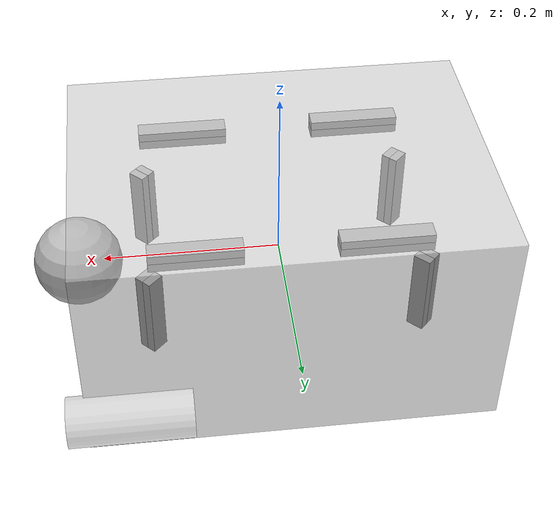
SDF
<?xml version='1.0' encoding='UTF-8'?>
<sdf version="1.6">
  <model name="auv">
    <pose>0 0 0 0 0 0</pose>

    <!-- BlueROV2 thruster reference: http://www.ardusub.com/introduction/features.html -->
    <!-- fluid_density: 1000 -->
    <!-- displaced_mass: 10.05 -->

    <link name="base_link">
      <inertial>
        <pose>0 0 0.011 0 0 0</pose>
        <mass>10</mass>
        <inertia>
          <ixx>0.09873097998042396</ixx>
          <ixy>0</ixy>
          <ixz>0</ixz>
          <iyy>0.17756847998042397</iyy>
          <iyz>0</iyz>
          <izz>0.2692441666666667</izz>
        </inertia>
      </inertial>

      <visual name="base_link_box">
        <pose>0 0 0 0 0 0</pose>
        <transparency>0.5</transparency>
        <geometry>
          <box>
            <size>0.457 0.338 0.25</size>
          </box>
        </geometry>
      </visual>

      <visual name="base_link_dome">
        <pose>0.2285 0 0 0 0 0</pose>
        <geometry>
          <sphere>
            <radius>0.05</radius>
          </sphere>
        </geometry>
        <material>
          <emissive>0 1 0 0</emissive>
        </material>
      </visual>

      <!-- Collision volume * fluid_density == displaced mass, used by BuoyancyPlugin -->
      <collision name="base_link_collision">
        <pose>0 0 0.06 0 0 0</pose>
        <geometry>
          <box>
            <size>0.457 0.338 0.06506286173008947</size>
          </box>
        </geometry>
      </collision>

      <!-- IMU sensor gyro and accel data will be sent to ArduSub -->
      <sensor name="imu_sensor" type="imu">
        <!-- Transform from the Gazebo body frame (x-forward, y-left, z-up)
             to the ArduPilot body frame (x-forward, y-right, z-down) -->
        <pose>0 0 0 3.141592653589793 0 0</pose>
        <always_on>1</always_on>
        <update_rate>1000.0</update_rate>
      </sensor>

    </link>

    <!-- Hydrodynamics plugin -->
    <plugin
        filename="gz-sim-hydrodynamics-system"
        name="gz::sim::systems::Hydrodynamics">
      <link_name>base_link</link_name>
      <water_density>1000</water_density>
      <!-- Added mass: -->
      <xDotU>0</xDotU>
      <yDotV>0</yDotV>
      <zDotW>0</zDotW>
      <kDotP>0</kDotP>
      <mDotQ>0</mDotQ>
      <nDotR>0</nDotR>
      <!-- First order stability derivative: -->
      <xU>0</xU>
      <yV>0</yV>
      <zW>0</zW>
      <kP>0</kP>
      <mQ>0</mQ>
      <nR>0</nR>
      <!-- Second order stability derivative: -->
      <xUabsU>-33.800000000000004</xUabsU>
      <yVabsV>-54.26875</yVabsV>
      <zWabsW>-73.37135</zWabsW>
      <kPabsP>-4.0</kPabsP>
      <mQabsQ>-4.0</mQabsQ>
      <nRabsR>-4.0</nRabsR>
    </plugin>

    <link name="thruster1">
      <pose>0.15 -0.09 0 -1.5707963267948966 1.5707963267948966 -0.7853981633974483</pose>
      <visual name="thruster_front">
        <pose>0 0 0.005 0 0 0</pose>
        <geometry>
          <box>
            <size>0.1 0.02 0.01</size>
          </box>
        </geometry>
        <material>
          <emissive>0 0 1 0</emissive>
        </material>
      </visual>
      <visual name="thruster_back">
        <pose>0 0 -0.005 0 0 0</pose>
        <geometry>
          <box>
            <size>0.1 0.02 0.01</size>
          </box>
        </geometry>
        <material>
          <emissive>1 0 0 0</emissive>
        </material>
      </visual>
      <inertial>
        <mass>0.002</mass>
        <inertia>
          <ixx>0.001</ixx>
          <ixy>0</ixy>
          <ixz>0</ixz>
          <iyy>0.001</iyy>
          <iyz>0</iyz>
          <izz>0.001</izz>
        </inertia>
      </inertial>
    </link>

    <link name="thruster2">
      <pose>0.15 0.09 0 -1.5707963267948966 1.5707963267948966 -2.356194490192345</pose>
      <visual name="thruster_front">
        <pose>0 0 0.005 0 0 0</pose>
        <geometry>
          <box>
            <size>0.1 0.02 0.01</size>
          </box>
        </geometry>
        <material>
          <emissive>0 0 1 0</emissive>
        </material>
      </visual>
      <visual name="thruster_back">
        <pose>0 0 -0.005 0 0 0</pose>
        <geometry>
          <box>
            <size>0.1 0.02 0.01</size>
          </box>
        </geometry>
        <material>
          <emissive>1 0 0 0</emissive>
        </material>
      </visual>
      <inertial>
        <mass>0.002</mass>
        <inertia>
          <ixx>0.001</ixx>
          <ixy>0</ixy>
          <ixz>0</ixz>
          <iyy>0.001</iyy>
          <iyz>0</iyz>
          <izz>0.001</izz>
        </inertia>
      </inertial>
    </link>

    <link name="thruster3">
      <pose>-0.15 -0.09 0 -1.5707963267948966 1.5707963267948966 0.7853981633974483</pose>
      <visual name="thruster_front">
        <pose>0 0 0.005 0 0 0</pose>
        <geometry>
          <box>
            <size>0.1 0.02 0.01</size>
          </box>
        </geometry>
        <material>
          <emissive>0 0 1 0</emissive>
        </material>
      </visual>
      <visual name="thruster_back">
        <pose>0 0 -0.005 0 0 0</pose>
        <geometry>
          <box>
            <size>0.1 0.02 0.01</size>
          </box>
        </geometry>
        <material>
          <emissive>1 0 0 0</emissive>
        </material>
      </visual>
      <inertial>
        <mass>0.002</mass>
        <inertia>
          <ixx>0.001</ixx>
          <ixy>0</ixy>
          <ixz>0</ixz>
          <iyy>0.001</iyy>
          <iyz>0</iyz>
          <izz>0.001</izz>
        </inertia>
      </inertial>
    </link>

    <link name="thruster4">
      <pose>-0.15 0.09 0 -1.5707963267948966 1.5707963267948966 2.356194490192345</pose>
      <visual name="thruster_front">
        <pose>0 0 0.005 0 0 0</pose>
        <geometry>
          <box>
            <size>0.1 0.02 0.01</size>
          </box>
        </geometry>
        <material>
          <emissive>0 0 1 0</emissive>
        </material>
      </visual>
      <visual name="thruster_back">
        <pose>0 0 -0.005 0 0 0</pose>
        <geometry>
          <box>
            <size>0.1 0.02 0.01</size>
          </box>
        </geometry>
        <material>
          <emissive>1 0 0 0</emissive>
        </material>
      </visual>
      <inertial>
        <mass>0.002</mass>
        <inertia>
          <ixx>0.001</ixx>
          <ixy>0</ixy>
          <ixz>0</ixz>
          <iyy>0.001</iyy>
          <iyz>0</iyz>
          <izz>0.001</izz>
        </inertia>
      </inertial>
    </link>

    <link name="thruster5">
      <pose>0.1 -0.105 0.09 0 0 0</pose>
      <visual name="thruster_front">
        <pose>0 0 0.005 0 0 0</pose>
        <geometry>
          <box>
            <size>0.1 0.02 0.01</size>
          </box>
        </geometry>
        <material>
          <emissive>0 0 1 0</emissive>
        </material>
      </visual>
      <visual name="thruster_back">
        <pose>0 0 -0.005 0 0 0</pose>
        <geometry>
          <box>
            <size>0.1 0.02 0.01</size>
          </box>
        </geometry>
        <material>
          <emissive>1 0 0 0</emissive>
        </material>
      </visual>
      <inertial>
        <mass>0.002</mass>
        <inertia>
          <ixx>0.001</ixx>
          <ixy>0</ixy>
          <ixz>0</ixz>
          <iyy>0.001</iyy>
          <iyz>0</iyz>
          <izz>0.001</izz>
        </inertia>
      </inertial>
    </link>

    <link name="thruster6">
      <pose>0.1 0.105 0.09 0 0 0</pose>
      <visual name="thruster_front">
        <pose>0 0 0.005 0 0 0</pose>
        <geometry>
          <box>
            <size>0.1 0.02 0.01</size>
          </box>
        </geometry>
        <material>
          <emissive>0 0 1 0</emissive>
        </material>
      </visual>
      <visual name="thruster_back">
        <pose>0 0 -0.005 0 0 0</pose>
        <geometry>
          <box>
            <size>0.1 0.02 0.01</size>
          </box>
        </geometry>
        <material>
          <emissive>1 0 0 0</emissive>
        </material>
      </visual>
      <inertial>
        <mass>0.002</mass>
        <inertia>
          <ixx>0.001</ixx>
          <ixy>0</ixy>
          <ixz>0</ixz>
          <iyy>0.001</iyy>
          <iyz>0</iyz>
          <izz>0.001</izz>
        </inertia>
      </inertial>
    </link>

     <link name="thruster7">
      <pose>-0.1 -0.105 0.09 0 0 0</pose>
      <visual name="thruster_front">
        <pose>0 0 0.005 0 0 0</pose>
        <geometry>
          <box>
            <size>0.1 0.02 0.01</size>
          </box>
        </geometry>
        <material>
          <emissive>0 0 1 0</emissive>
        </material>
      </visual>
      <visual name="thruster_back">
        <pose>0 0 -0.005 0 0 0</pose>
        <geometry>
          <box>
            <size>0.1 0.02 0.01</size>
          </box>
        </geometry>
        <material>
          <emissive>1 0 0 0</emissive>
        </material>
      </visual>
      <inertial>
        <mass>0.002</mass>
        <inertia>
          <ixx>0.001</ixx>
          <ixy>0</ixy>
          <ixz>0</ixz>
          <iyy>0.001</iyy>
          <iyz>0</iyz>
          <izz>0.001</izz>
        </inertia>
      </inertial>
    </link>

     <link name="thruster8">
      <pose>-0.1 0.105 0.09 0 0 0</pose>
      <visual name="thruster_front">
        <pose>0 0 0.005 0 0 0</pose>
        <geometry>
          <box>
            <size>0.1 0.02 0.01</size>
          </box>
        </geometry>
        <material>
          <emissive>0 0 1 0</emissive>
        </material>
      </visual>
      <visual name="thruster_back">
        <pose>0 0 -0.005 0 0 0</pose>
        <geometry>
          <box>
            <size>0.1 0.02 0.01</size>
          </box>
        </geometry>
        <material>
          <emissive>1 0 0 0</emissive>
        </material>
      </visual>
      <inertial>
        <mass>0.002</mass>
        <inertia>
          <ixx>0.001</ixx>
          <ixy>0</ixy>
          <ixz>0</ixz>
          <iyy>0.001</iyy>
          <iyz>0</iyz>
          <izz>0.001</izz>
        </inertia>
      </inertial>
    </link>

    <joint name="thruster1_joint" type="revolute">
      <parent>base_link</parent>
      <child>thruster1</child>
      <axis>
        <xyz>0 0 -1</xyz>
      </axis>
    </joint>

    <joint name="thruster2_joint" type="revolute">
      <parent>base_link</parent>
      <child>thruster2</child>
      <axis>
        <xyz>0 0 -1</xyz>
      </axis>
    </joint>

    <joint name="thruster3_joint" type="revolute">
      <parent>base_link</parent>
      <child>thruster3</child>
      <axis>
        <xyz>0 0 -1</xyz>
      </axis>
    </joint>

    <joint name="thruster4_joint" type="revolute">
      <parent>base_link</parent>
      <child>thruster4</child>
      <axis>
        <xyz>0 0 -1</xyz>
      </axis>
    </joint>

    <joint name="thruster5_joint" type="revolute">
      <parent>base_link</parent>
      <child>thruster5</child>
      <axis>
        <xyz>0 0 -1</xyz>
      </axis>
    </joint>

    <joint name="thruster6_joint" type="revolute">
      <parent>base_link</parent>
      <child>thruster6</child>
      <axis>
        <xyz>0 0 -1</xyz>
      </axis>
    </joint>

    <joint name="thruster7_joint" type="revolute">
      <parent>base_link</parent>
      <child>thruster7</child>
      <axis>
        <xyz>0 0 -1</xyz>
      </axis>
    </joint>

    <joint name="thruster8_joint" type="revolute">
      <parent>base_link</parent>
      <child>thruster8</child>
      <axis>
        <xyz>0 0 -1</xyz>
      </axis>
    </joint>

    <plugin
        filename="gz-sim-thruster-system"
        name="gz::sim::systems::Thruster">
      <namespace>orca4</namespace>
      <joint_name>thruster1_joint</joint_name>
      <thrust_coefficient>0.02</thrust_coefficient>
      <fluid_density>1000</fluid_density>
      <propeller_diameter>0.1</propeller_diameter>
      <velocity_control>true</velocity_control>
      <use_angvel_cmd>False</use_angvel_cmd>
    </plugin>

    <plugin
        filename="gz-sim-thruster-system"
        name="gz::sim::systems::Thruster">
      <namespace>orca4</namespace>
      <joint_name>thruster2_joint</joint_name>
      <thrust_coefficient>0.02</thrust_coefficient>
      <fluid_density>1000</fluid_density>
      <propeller_diameter>0.1</propeller_diameter>
      <velocity_control>true</velocity_control>
      <use_angvel_cmd>False</use_angvel_cmd>
    </plugin>

    <plugin
        filename="gz-sim-thruster-system"
        name="gz::sim::systems::Thruster">
      <namespace>orca4</namespace>
      <joint_name>thruster3_joint</joint_name>
      <!-- Reverse spin to balance torque -->
      <thrust_coefficient>-0.02</thrust_coefficient>
      <fluid_density>1000</fluid_density>
      <propeller_diameter>0.1</propeller_diameter>
      <velocity_control>true</velocity_control>
      <use_angvel_cmd>False</use_angvel_cmd>
    </plugin>

    <plugin
        filename="gz-sim-thruster-system"
        name="gz::sim::systems::Thruster">
      <namespace>orca4</namespace>
      <joint_name>thruster4_joint</joint_name>
      <!-- Reverse spin to balance torque -->
      <thrust_coefficient>-0.02</thrust_coefficient>
      <fluid_density>1000</fluid_density>
      <propeller_diameter>0.1</propeller_diameter>
      <velocity_control>true</velocity_control>
      <use_angvel_cmd>False</use_angvel_cmd>
    </plugin>

    <plugin
        filename="gz-sim-thruster-system"
        name="gz::sim::systems::Thruster">
      <namespace>orca4</namespace>
      <joint_name>thruster5_joint</joint_name>
      <thrust_coefficient>0.02</thrust_coefficient>
      <fluid_density>1000</fluid_density>
      <propeller_diameter>0.1</propeller_diameter>
      <velocity_control>true</velocity_control>
      <use_angvel_cmd>False</use_angvel_cmd>
    </plugin>

    <plugin
        filename="gz-sim-thruster-system"
        name="gz::sim::systems::Thruster">
      <namespace>orca4</namespace>
      <joint_name>thruster6_joint</joint_name>
      <!-- Reverse spin to balance torque -->
      <thrust_coefficient>-0.02</thrust_coefficient>
      <fluid_density>1000</fluid_density>
      <propeller_diameter>0.1</propeller_diameter>
      <velocity_control>true</velocity_control>
      <use_angvel_cmd>False</use_angvel_cmd>
    </plugin>
    <plugin
        filename="gz-sim-thruster-system"
        name="gz::sim::systems::Thruster">
      <namespace>orca4</namespace>
      <joint_name>thruster7_joint</joint_name>
      <!-- Reverse spin to balance torque -->
      <thrust_coefficient>-0.02</thrust_coefficient>
      <fluid_density>1000</fluid_density>
      <propeller_diameter>0.1</propeller_diameter>
      <velocity_control>true</velocity_control>
      <use_angvel_cmd>False</use_angvel_cmd>
    </plugin>
    <plugin
        filename="gz-sim-thruster-system"
        name="gz::sim::systems::Thruster">
      <namespace>orca4</namespace>
      <joint_name>thruster8_joint</joint_name>
      <thrust_coefficient>0.02</thrust_coefficient>
      <fluid_density>1000</fluid_density>
      <propeller_diameter>0.1</propeller_diameter>
      <velocity_control>true</velocity_control>
      <use_angvel_cmd>False</use_angvel_cmd>
    </plugin>

    <plugin name="ArduPilotPlugin" filename="libArduPilotPlugin.so">
      <!-- Port settings -->
      <fdm_addr>127.0.0.1</fdm_addr>
      <fdm_port_in>9002</fdm_port_in>
      <connectionTimeoutMaxCount>5</connectionTimeoutMaxCount>
      <lock_step>1</lock_step>

      <!-- Transform from the Gazebo body frame (x-forward, y-left, z-up)
           to the ArduPilot body frame (x-forward, y-right, z-down) -->
      <modelXYZToAirplaneXForwardZDown>0 0 0 3.141592653589793 0 0</modelXYZToAirplaneXForwardZDown>

      <!-- Transform from the Gazebo world frame (ENU)
           to the ArduPilot world frame (NED) -->
      <gazeboXYZToNED>0 0 0 3.141592653589793 0 1.5707963267948966</gazeboXYZToNED>

      <!-- Sensors -->
      <imuName>imu_sensor</imuName>

      <!-- Thrusters -->
      <control channel="0">
        <jointName>thruster1_joint</jointName>
        <servo_min>1100</servo_min>
        <servo_max>1900</servo_max>
        <type>COMMAND</type>
        <cmd_topic>/model/orca4/joint/thruster1_joint/cmd_thrust</cmd_topic>
        <offset>-0.5</offset>
        <multiplier>100</multiplier>
      </control>
      <control channel="1">
        <jointName>thruster2_joint</jointName>
        <servo_min>1100</servo_min>
        <servo_max>1900</servo_max>
        <type>COMMAND</type>
        <cmd_topic>/model/orca4/joint/thruster2_joint/cmd_thrust</cmd_topic>
        <offset>-0.5</offset>
        <multiplier>100</multiplier>
      </control>
      <control channel="2">
        <jointName>thruster3_joint</jointName>
        <servo_min>1100</servo_min>
        <servo_max>1900</servo_max>
        <type>COMMAND</type>
        <cmd_topic>/model/orca4/joint/thruster3_joint/cmd_thrust</cmd_topic>
        <offset>-0.5</offset>
        <multiplier>100</multiplier>
      </control>
      <control channel="3">
        <jointName>thruster4_joint</jointName>
        <servo_min>1100</servo_min>
        <servo_max>1900</servo_max>
        <type>COMMAND</type>
        <cmd_topic>/model/orca4/joint/thruster4_joint/cmd_thrust</cmd_topic>
        <offset>-0.5</offset>
        <multiplier>100</multiplier>
      </control>
      <control channel="4">
        <jointName>thruster5_joint</jointName>
        <servo_min>1100</servo_min>
        <servo_max>1900</servo_max>
        <type>COMMAND</type>
        <cmd_topic>/model/orca4/joint/thruster5_joint/cmd_thrust</cmd_topic>
        <offset>-0.5</offset>
        <multiplier>100</multiplier>
      </control>
      <control channel="5">
        <jointName>thruster6_joint</jointName>
        <servo_min>1100</servo_min>
        <servo_max>1900</servo_max>
        <type>COMMAND</type>
        <cmd_topic>/model/orca4/joint/thruster6_joint/cmd_thrust</cmd_topic>
        <offset>-0.5</offset>
        <multiplier>100</multiplier>
      </control>
      <control channel="6">
        <jointName>thruster7_joint</jointName>
        <servo_min>1100</servo_min>
        <servo_max>1900</servo_max>
        <type>COMMAND</type>
        <cmd_topic>/model/orca4/joint/thruster7_joint/cmd_thrust</cmd_topic>
        <offset>-0.5</offset>
        <multiplier>100</multiplier>
      </control>
      <control channel="7">
        <jointName>thruster8_joint</jointName>
        <servo_min>1100</servo_min>
        <servo_max>1900</servo_max>
        <type>COMMAND</type>
        <cmd_topic>/model/orca4/joint/thruster8_joint/cmd_thrust</cmd_topic>
        <offset>-0.5</offset>
        <multiplier>100</multiplier>
      </control>

    </plugin>

    <!-- Left camera link -->
    <link name="left_camera_link">
      <pose>0.18 0.18 -0.06749999999999999 0 1.5707963267948966 0</pose>
      <visual name="left_camera_tube">
        <transparency>0.5</transparency>
        <geometry>
          <cylinder>
            <length>0.135</length>
            <radius>0.0275</radius>
          </cylinder>
        </geometry>
      </visual>
      <sensor name="left_camera" type="camera">
        <pose>0 0 -0.08750000000000001 0 1.5707963267948966 0</pose>
        <camera>
          <horizontal_fov>1.4</horizontal_fov>
          <image>
            <width>800</width>
            <height>600</height>
          </image>
          <clip>
            <near>0.2</near>
            <far>4</far>
          </clip>
        </camera>
        <always_on>1</always_on>
        <update_rate>5</update_rate>
        <visualize>true</visualize>
        <topic>stereo_left</topic>
      </sensor>
      <inertial>
        <mass>0.001</mass>
        <inertia>
          <ixx>0.001</ixx>
          <ixy>0</ixy>
          <ixz>0</ixz>
          <iyy>0.001</iyy>
          <iyz>0</iyz>
          <izz>0.001</izz>
        </inertia>
      </inertial>
    </link>

    <!-- Attach left_camera_link to base_link -->
    <joint name="left_camera_joint" type="fixed">
      <parent>base_link</parent>
      <child>left_camera_link</child>
    </joint>

    <!-- Right camera link -->
    <link name="right_camera_link">
      <pose>0.18 -0.18 -0.06749999999999999 0 1.5707963267948966 0</pose>
      <visual name="right_camera_tube">
        <transparency>0.5</transparency>
        <geometry>
          <cylinder>
            <length>0.135</length>
            <radius>0.0275</radius>
          </cylinder>
        </geometry>
      </visual>
      <sensor name="right_camera" type="camera">
        <pose>0 0 -0.08750000000000001 0 1.5707963267948966 0</pose>
        <camera>
          <horizontal_fov>1.4</horizontal_fov>
          <image>
            <width>800</width>
            <height>600</height>
          </image>
          <clip>
            <near>0.2</near>
            <far>4</far>
          </clip>
        </camera>
        <always_on>1</always_on>
        <update_rate>5</update_rate>
        <visualize>true</visualize>
        <topic>stereo_right</topic>
      </sensor>
      <inertial>
        <mass>0.001</mass>
        <inertia>
          <ixx>0.001</ixx>
          <ixy>0</ixy>
          <ixz>0</ixz>
          <iyy>0.001</iyy>
          <iyz>0</iyz>
          <izz>0.001</izz>
        </inertia>
      </inertial>
    </link>

    <!-- Attach right_camera_link to base_link -->
    <joint name="right_camera_joint" type="fixed">
      <parent>base_link</parent>
      <child>right_camera_link</child>
    </joint>

    <!-- Publish the ground-truth pose for rviz -->
    <plugin
        filename="gz-sim-odometry-publisher-system"
        name="gz::sim::systems::OdometryPublisher">
      <odom_frame>map</odom_frame>
      <robot_base_frame>orca4</robot_base_frame>
      <dimensions>3</dimensions>
    </plugin>

  </model>
</sdf>
